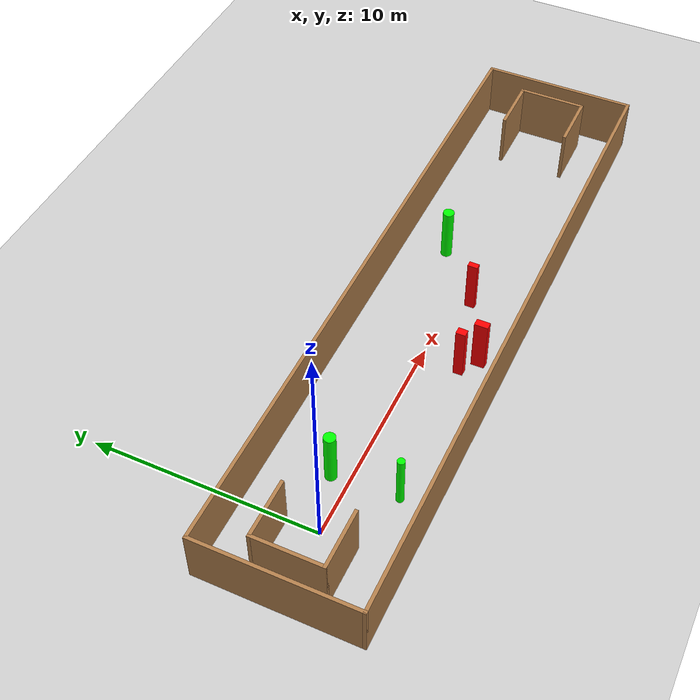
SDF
<sdf version="1.7">
 <world name="default">
  <light name="sun" type="directional">
   <pose>0 0 10 0 -0 0</pose>
   <diffuse>0.8 0.8 0.8 1</diffuse>
   <specular>0.2 0.2 0.2 1</specular>
   <attenuation>
    <range>1000</range>
    <constant>0.9</constant>
    <linear>0.01</linear>
    <quadratic>0.001</quadratic>
   </attenuation>
   <direction>-0.5 0.1 -0.9</direction>
   <spot><inner_angle>0</inner_angle><outer_angle>0</outer_angle><falloff>0</falloff></spot>
  </light>
  <model name="ground_plane">
   <static>1</static>
   <link name="link">
    <collision name="collision">
     <geometry><plane><normal>0 0 1</normal><size>100 100</size></plane></geometry>
     <surface>
      <contact><collide_bitmask>65535</collide_bitmask></contact>
      <friction><ode><mu>100</mu><mu2>50</mu2></ode></friction>
     </surface>
    </collision>
    <visual name="visual">
     <cast_shadows>0</cast_shadows>
     <geometry><plane><normal>0 0 1</normal><size>100 100</size></plane></geometry>
     <material>
      <script><uri>file://media/materials/scripts/gazebo.material</uri><name>Gazebo/Grey</name></script>
     </material>
    </visual>
   </link>
  </model>
  <gravity>0 0 -9.8</gravity>
  <magnetic_field>6e-06 2.3e-05 -4.2e-05</magnetic_field>
  <atmosphere type="adiabatic"/>
  <physics type="ode">
   <max_step_size>0.001</max_step_size>
   <real_time_factor>1</real_time_factor>
   <real_time_update_rate>1000</real_time_update_rate>
  </physics>
  <scene><ambient>0.4 0.4 0.4 1</ambient><background>0.7 0.7 0.7 1</background><shadows>1</shadows></scene>
  <spherical_coordinates>
   <surface_model>EARTH_WGS84</surface_model>
   <latitude_deg>0</latitude_deg>
   <longitude_deg>0</longitude_deg>
   <elevation>0</elevation>
   <heading_deg>0</heading_deg>
  </spherical_coordinates>
  <model name="my_base_walls">
   <link name="Wall_0">
    <collision name="Wall_0_Collision">
     <geometry><box><size>7.15 0.15 2.5</size></box></geometry>
     <pose>0 0 1.25 0 -0 0</pose>
    </collision>
    <visual name="Wall_0_Visual">
     <pose>0 0 1.25 0 -0 0</pose>
     <geometry><box><size>7.15 0.15 2.5</size></box></geometry>
     <material>
      <script><uri>file://media/materials/scripts/gazebo.material</uri><name>Gazebo/Wood</name></script>
      <ambient>1 1 1 1</ambient>
     </material>
     <meta><layer>0</layer></meta>
    </visual>
    <pose>-15 0 0 0 -0 1.5708</pose>
   </link>
   <link name="Wall_10">
    <collision name="Wall_10_Collision">
     <geometry><box><size>2.65 0.15 2.5</size></box></geometry>
     <pose>0 0 1.25 0 -0 0</pose>
    </collision>
    <visual name="Wall_10_Visual">
     <pose>0 0 1.25 0 -0 0</pose>
     <geometry><box><size>2.65 0.15 2.5</size></box></geometry>
     <material>
      <script><uri>file://media/materials/scripts/gazebo.material</uri><name>Gazebo/Wood</name></script>
      <ambient>1 1 1 1</ambient>
     </material>
     <meta><layer>0</layer></meta>
    </visual>
    <pose>-12.75 -1.5 0 0 -0 0</pose>
   </link>
   <link name="Wall_12">
    <collision name="Wall_12_Collision">
     <geometry><box><size>2.65 0.15 2.5</size></box></geometry>
     <pose>0 0 1.25 0 -0 0</pose>
    </collision>
    <visual name="Wall_12_Visual">
     <pose>0 0 1.25 0 -0 0</pose>
     <geometry><box><size>2.65 0.15 2.5</size></box></geometry>
     <material>
      <script><uri>file://media/materials/scripts/gazebo.material</uri><name>Gazebo/Wood</name></script>
      <ambient>1 1 1 1</ambient>
     </material>
     <meta><layer>0</layer></meta>
    </visual>
    <pose>-12.75 1.5 0 0 -0 0</pose>
   </link>
   <link name="Wall_14">
    <collision name="Wall_14_Collision">
     <geometry><box><size>3.15 0.15 2.5</size></box></geometry>
     <pose>0 0 1.25 0 -0 0</pose>
    </collision>
    <visual name="Wall_14_Visual">
     <pose>0 0 1.25 0 -0 0</pose>
     <geometry><box><size>3.15 0.15 2.5</size></box></geometry>
     <material>
      <script><uri>file://media/materials/scripts/gazebo.material</uri><name>Gazebo/Wood</name></script>
      <ambient>1 1 1 1</ambient>
     </material>
     <meta><layer>0</layer></meta>
    </visual>
    <pose>14 0 0 0 -0 -1.5708</pose>
   </link>
   <link name="Wall_15">
    <collision name="Wall_15_Collision">
     <geometry><box><size>2.65 0.15 2.5</size></box></geometry>
     <pose>0 0 1.25 0 -0 0</pose>
    </collision>
    <visual name="Wall_15_Visual">
     <pose>0 0 1.25 0 -0 0</pose>
     <geometry><box><size>2.65 0.15 2.5</size></box></geometry>
     <material>
      <script><uri>file://media/materials/scripts/gazebo.material</uri><name>Gazebo/Wood</name></script>
      <ambient>1 1 1 1</ambient>
     </material>
     <meta><layer>0</layer></meta>
    </visual>
    <pose>12.75 -1.5 0 0 -0 3.14159</pose>
   </link>
   <link name="Wall_17">
    <collision name="Wall_17_Collision">
     <geometry><box><size>2.65 0.15 2.5</size></box></geometry>
     <pose>0 0 1.25 0 -0 0</pose>
    </collision>
    <visual name="Wall_17_Visual">
     <pose>0 0 1.25 0 -0 0</pose>
     <geometry><box><size>2.65 0.15 2.5</size></box></geometry>
     <material>
      <script><uri>file://media/materials/scripts/gazebo.material</uri><name>Gazebo/Wood</name></script>
      <ambient>1 1 1 1</ambient>
     </material>
     <meta><layer>0</layer></meta>
    </visual>
    <pose>12.75 1.5 0 0 -0 3.14159</pose>
   </link>
   <link name="Wall_2">
    <collision name="Wall_2_Collision">
     <geometry><box><size>30.15 0.15 2.5</size></box></geometry>
     <pose>0 0 1.25 0 -0 0</pose>
    </collision>
    <visual name="Wall_2_Visual">
     <pose>0 0 1.25 0 -0 0</pose>
     <geometry><box><size>30.15 0.15 2.5</size></box></geometry>
     <material>
      <script><uri>file://media/materials/scripts/gazebo.material</uri><name>Gazebo/Wood</name></script>
      <ambient>1 1 1 1</ambient>
     </material>
     <meta><layer>0</layer></meta>
    </visual>
    <pose>-0 -3.5 0 0 -0 0</pose>
   </link>
   <link name="Wall_4">
    <collision name="Wall_4_Collision">
     <geometry><box><size>30.15 0.15 2.5</size></box></geometry>
     <pose>0 0 1.25 0 -0 0</pose>
    </collision>
    <visual name="Wall_4_Visual">
     <pose>0 0 1.25 0 -0 0</pose>
     <geometry><box><size>30.15 0.15 2.5</size></box></geometry>
     <material>
      <script><uri>file://media/materials/scripts/gazebo.material</uri><name>Gazebo/Wood</name></script>
      <ambient>1 1 1 1</ambient>
     </material>
     <meta><layer>0</layer></meta>
    </visual>
    <pose>-0 3.5 0 0 -0 0</pose>
   </link>
   <link name="Wall_6">
    <collision name="Wall_6_Collision">
     <geometry><box><size>7.15 0.15 2.5</size></box></geometry>
     <pose>0 0 1.25 0 -0 0</pose>
    </collision>
    <visual name="Wall_6_Visual">
     <pose>0 0 1.25 0 -0 0</pose>
     <geometry><box><size>7.15 0.15 2.5</size></box></geometry>
     <material>
      <script><uri>file://media/materials/scripts/gazebo.material</uri><name>Gazebo/Wood</name></script>
      <ambient>1 1 1 1</ambient>
     </material>
     <meta><layer>0</layer></meta>
    </visual>
    <pose>15 0 0 0 -0 -1.5708</pose>
   </link>
   <link name="Wall_9">
    <collision name="Wall_9_Collision">
     <geometry><box><size>3.15 0.15 2.5</size></box></geometry>
     <pose>0 0 1.25 0 -0 0</pose>
    </collision>
    <visual name="Wall_9_Visual">
     <pose>0 0 1.25 0 -0 0</pose>
     <geometry><box><size>3.15 0.15 2.5</size></box></geometry>
     <material>
      <script><uri>file://media/materials/scripts/gazebo.material</uri><name>Gazebo/Wood</name></script>
      <ambient>1 1 1 1</ambient>
     </material>
     <meta><layer>0</layer></meta>
    </visual>
    <pose>-14 0 0 0 -0 -1.5708</pose>
   </link>
   <static>1</static>
   <pose>11.5 0 0 0 -0 0</pose>
  </model>
  <model name="cylinder1">
   <static>1</static>
   <link name="link">
    <inertial>
     <mass>1</mass>
     <inertia><ixx>0.5</ixx><ixy>0</ixy><ixz>0</ixz><iyy>0.5</iyy><iyz>0</iyz><izz>1</izz></inertia>
    </inertial>
    <collision name="collision">
     <geometry><cylinder><radius>0.24833339865702203</radius><length>2.5</length></cylinder></geometry>
    </collision>
    <visual name="visual">
     <geometry><cylinder><radius>0.24833339865702203</radius><length>2.5</length></cylinder></geometry>
     <material>
      <ambient>0 1 0 1</ambient>
      <diffuse>0 1 0 1</diffuse>
      <specular>0.1 0.1 0.1 1</specular>
      <emissive>0 0 0 0</emissive>
     </material>
    </visual>
   </link>
   <pose>15.84711842040156 1.4487626078383986 1.25 0 0 0</pose>
  </model>
  <model name="cylinder2">
   <static>1</static>
   <link name="link">
    <inertial>
     <mass>1</mass>
     <inertia><ixx>0.5</ixx><ixy>0</ixy><ixz>0</ixz><iyy>0.5</iyy><iyz>0</iyz><izz>1</izz></inertia>
    </inertial>
    <collision name="collision">
     <geometry><cylinder><radius>0.16191969285955618</radius><length>2.5</length></cylinder></geometry>
    </collision>
    <visual name="visual">
     <geometry><cylinder><radius>0.16191969285955618</radius><length>2.5</length></cylinder></geometry>
     <material>
      <ambient>0 1 0 1</ambient>
      <diffuse>0 1 0 1</diffuse>
      <specular>0.1 0.1 0.1 1</specular>
      <emissive>0 0 0 0</emissive>
     </material>
    </visual>
   </link>
   <pose>2.678794909288417 -2.0828661836523423 1.25 0 0 0</pose>
  </model>
  <model name="cylinder3">
   <static>1</static>
   <link name="link">
    <inertial>
     <mass>1</mass>
     <inertia><ixx>0.5</ixx><ixy>0</ixy><ixz>0</ixz><iyy>0.5</iyy><iyz>0</iyz><izz>1</izz></inertia>
    </inertial>
    <collision name="collision">
     <geometry><cylinder><radius>0.25427779945195705</radius><length>2.5</length></cylinder></geometry>
    </collision>
    <visual name="visual">
     <geometry><cylinder><radius>0.25427779945195705</radius><length>2.5</length></cylinder></geometry>
     <material>
      <ambient>0 1 0 1</ambient>
      <diffuse>0 1 0 1</diffuse>
      <specular>0.1 0.1 0.1 1</specular>
      <emissive>0 0 0 0</emissive>
     </material>
    </visual>
   </link>
   <pose>2.5436512181575424 0.7994677469590066 1.25 0 0 0</pose>
  </model>
  <model name="box1">
   <static>1</static>
   <link name="link">
    <inertial>
     <mass>1</mass>
     <inertia><ixx>0.083</ixx><ixy>0</ixy><ixz>0</ixz><iyy>0.083</iyy><iyz>0</iyz><izz>0.083</izz></inertia>
    </inertial>
    <collision name="collision">
     <geometry><box><size>0.33257015077508756 0.5940143556684218 2.5</size></box></geometry>
    </collision>
    <visual name="visual">
     <geometry><box><size>0.33257015077508756 0.5940143556684218 2.5</size></box></geometry>
     <material>
      <ambient>1 0 0 1</ambient>
      <diffuse>1 0 0 1</diffuse>
      <specular>0.1 0.1 0.1 1</specular>
      <emissive>0 0 0 0</emissive>
     </material>
    </visual>
    <sensor name="my_contact" type="contact">
     <contact><collision>box_collision</collision><topic>__default_topic__</topic></contact>
    </sensor>
   </link>
   <pose>10.308953759327913 -2.316924581175562 1.25 0 0 0</pose>
  </model>
  <model name="box2">
   <static>1</static>
   <link name="link">
    <inertial>
     <mass>1</mass>
     <inertia><ixx>0.083</ixx><ixy>0</ixy><ixz>0</ixz><iyy>0.083</iyy><iyz>0</iyz><izz>0.083</izz></inertia>
    </inertial>
    <collision name="collision">
     <geometry><box><size>0.25640039496266687 0.44427281986589123 2.5</size></box></geometry>
    </collision>
    <visual name="visual">
     <geometry><box><size>0.25640039496266687 0.44427281986589123 2.5</size></box></geometry>
     <material>
      <ambient>1 0 0 1</ambient>
      <diffuse>1 0 0 1</diffuse>
      <specular>0.1 0.1 0.1 1</specular>
      <emissive>0 0 0 0</emissive>
     </material>
    </visual>
    <sensor name="my_contact" type="contact">
     <contact><collision>box_collision</collision><topic>__default_topic__</topic></contact>
    </sensor>
   </link>
   <pose>13.285762984555397 -0.7475246297057616 1.25 0 0 0</pose>
  </model>
  <model name="box3">
   <static>1</static>
   <link name="link">
    <inertial>
     <mass>1</mass>
     <inertia><ixx>0.083</ixx><ixy>0</ixy><ixz>0</ixz><iyy>0.083</iyy><iyz>0</iyz><izz>0.083</izz></inertia>
    </inertial>
    <collision name="collision">
     <geometry><box><size>0.32688495357258185 0.4239441262895759 2.5</size></box></geometry>
    </collision>
    <visual name="visual">
     <geometry><box><size>0.32688495357258185 0.4239441262895759 2.5</size></box></geometry>
     <material>
      <ambient>1 0 0 1</ambient>
      <diffuse>1 0 0 1</diffuse>
      <specular>0.1 0.1 0.1 1</specular>
      <emissive>0 0 0 0</emissive>
     </material>
    </visual>
    <sensor name="my_contact" type="contact">
     <contact><collision>box_collision</collision><topic>__default_topic__</topic></contact>
    </sensor>
   </link>
   <pose>9.560245403331344 -1.7223393541072496 1.25 0 0 0</pose>
  </model>
 </world>
</sdf>
